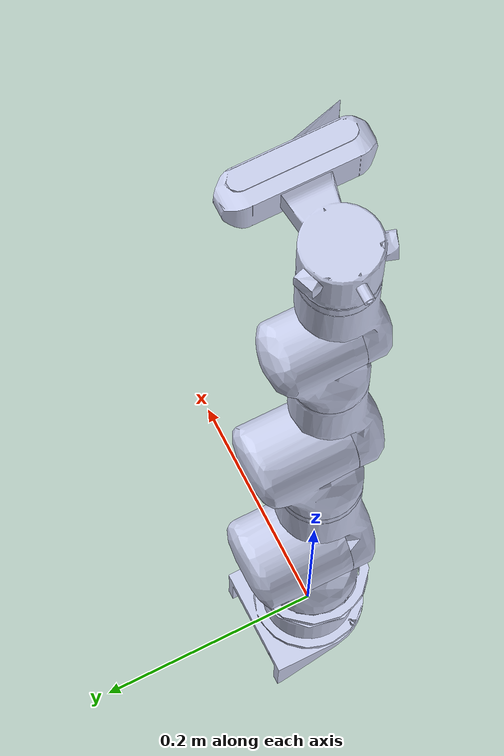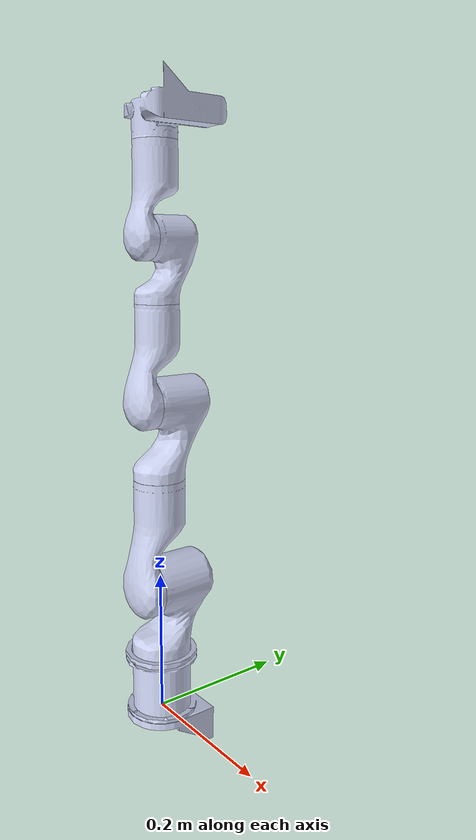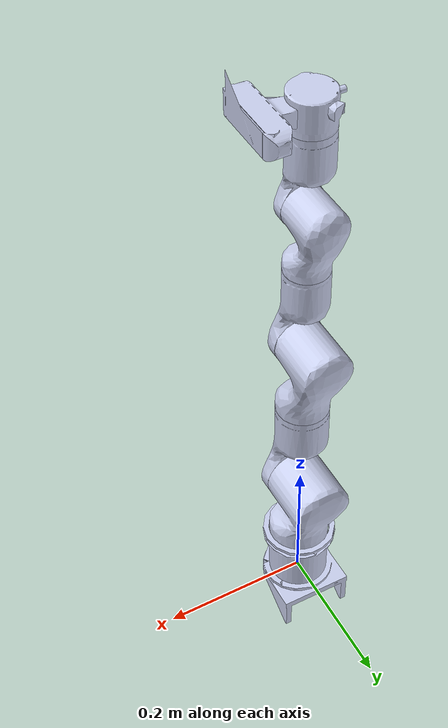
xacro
<?xml version="1.0"?>
<robot name="rm75_b_v_right" xmlns:xacro="http://www.ros.org/wiki/xacro">
  <!-- Define constants -->
  <xacro:property name="mesh_path" value="file://$(find dual_rm_75b_description)/meshes/" />
  <!-- Macro for visual and collision elements -->
  <xacro:macro name="visual_collision" params="mesh">
    <visual>
      <origin xyz="0 0 0" rpy="0 0 0" />
      <geometry>
        <mesh filename="${mesh_path}${mesh}" />
      </geometry>
      <material name="">
        <color rgba="0.79216 0.81961 0.93333 1" />
      </material>
    </visual>
    <collision>
      <origin xyz="0 0 0" rpy="0 0 0" />
      <geometry>
        <mesh filename="${mesh_path}${mesh}" />
      </geometry>
    </collision>
  </xacro:macro>
  <link
    name="r_base_link1">
    <inertial>
      <origin
        xyz="-4.8022E-05 0.0056915 0.024715"
        rpy="0 0 0" />
      <mass
        value="0.23441" />
      <inertia
        ixx="0.00027369"
        ixy="6.5702E-08"
        ixz="-3.2599E-09"
        iyy="0.000264"
        iyz="1.6355E-06"
        izz="0.00036679" />
    </inertial>
    <xacro:visual_collision mesh="r_base_link1.STL" />
  </link>
  <link
    name="r_link1">
    <inertial>
      <origin
        xyz="2.8966E-07 0.025188 -0.021107"
        rpy="0 0 0" />
      <mass
        value="0.59353" />
      <inertia
        ixx="0.0012661"
        ixy="-2.0397E-09"
        ixz="-5.3423E-09"
        iyy="0.00056131"
        iyz="-0.00021118"
        izz="0.0011816" />
    </inertial>
    <xacro:visual_collision mesh="r_link1.STL" />
  </link>
  <link
    name="r_link2">
    <inertial>
      <origin
        xyz="3.7069E-07 0.011077 0.07613"
        rpy="0 0 0" />
      <mass
        value="0.43285" />
      <inertia
        ixx="0.0012584"
        ixy="7.782E-10"
        ixz="3.39E-09"
        iyy="0.0012224"
        iyz="0.00027899"
        izz="0.00031747" />
    </inertial>
    <xacro:visual_collision mesh="r_link2.STL" />
  </link>
  <link
    name="r_link3">
    <inertial>
      <origin
        xyz="1.192E-07 0.027347 -0.023544"
        rpy="0 0 0" />
      <mass
        value="0.43132" />
      <inertia
        ixx="0.00079434"
        ixy="1.4708E-09"
        ixz="2.8344E-09"
        iyy="0.00031506"
        iyz="-0.00014262"
        izz="0.00073038" />
    </inertial>
    <xacro:visual_collision mesh="r_link3.STL" />
  </link>
  <link
    name="r_link4">
    <inertial>
      <origin
        xyz="4.7388E-06 0.010268 0.059592"
        rpy="0 0 0" />
      <mass
        value="0.28963" />
      <inertia
        ixx="0.00063737"
        ixy="-3.5039E-08"
        ixz="6.2578E-08"
        iyy="0.00061418"
        iyz="0.00014461"
        izz="0.00015649" />
    </inertial>
    <xacro:visual_collision mesh="r_link4.STL" />
  </link>
  <link
    name="r_link5">
    <inertial>
      <origin
        xyz="2.9088E-07 0.02154 -0.018042"
        rpy="0 0 0" />
      <mass
        value="0.23942" />
      <inertia
        ixx="0.00028595"
        ixy="-1.386E-09"
        ixz="-2.3541E-09"
        iyy="0.0001199"
        iyz="-4.424E-05"
        izz="0.00026273" />
    </inertial>
    <xacro:visual_collision mesh="r_link5.STL" />
  </link>
  <link
    name="r_link6">
    <inertial>
      <origin
        xyz="4.247E-06 0.0070761 0.05938"
        rpy="0 0 0" />
      <mass
        value="0.21879" />
      <inertia
        ixx="0.00035053"
        ixy="-1.6543E-08"
        ixz="2.8572E-08"
        iyy="0.0003345"
        iyz="7.8205E-05"
        izz="0.0001049" />
    </inertial>
    <xacro:visual_collision mesh="r_link6.STL" />
  </link>
  <link
    name="r_link7">
    <inertial>
      <origin
        xyz="-0.028764 5.1464E-06 0.023085"
        rpy="0 0 0" />
      <mass
        value="0.22147" />
      <inertia
        ixx="0.0001376"
        ixy="-5.7488E-08"
        ixz="1.6634E-05"
        iyy="0.00026855"
        iyz="-1.7799E-08"
        izz="0.00035277" />
    </inertial>
    <xacro:visual_collision mesh="r_link7.STL" />
  </link>

  <joint
    name="r_joint1"
    type="revolute">
    <origin
      xyz="0 0 0.187"
      rpy="-1.5708 0 3.1415" />
    <parent
      link="r_base_link1" />
    <child
      link="r_link1" />
    <axis
      xyz="0 -1 0" />
    <limit
      lower="-3.11"
      upper="3.11"
      effort="60"
      velocity="3.14" />
  </joint>
  <joint
    name="r_joint2"
    type="revolute">
    <origin
      xyz="0 0 0"
      rpy="1.5708 0 0" />
    <parent
      link="r_link1" />
    <child
      link="r_link2" />
    <axis
      xyz="0 1 0" />
    <limit
      lower="-2.27"
      upper="2.27"
      effort="60"
      velocity="3.14" />
  </joint>
  <joint
    name="r_joint3"
    type="revolute">
    <origin
      xyz="0 0 0.256"
      rpy="-1.5708 0 0" />
    <parent
      link="r_link2" />
    <child
      link="r_link3" />
    <axis
      xyz="0 1 0" />
    <limit
      lower="-3.11"
      upper="3.11"
      effort="30"
      velocity="3.925" />
  </joint>
  <joint
    name="r_joint4"
    type="revolute">
    <origin
      xyz="0 0 0"
      rpy="1.5708 0 0" />
    <parent
      link="r_link3" />
    <child
      link="r_link4" />
    <axis
      xyz="0 -1 0" />
    <limit
      lower="-2.36"
      upper="2.36"
      effort="30"
      velocity="3.925" />
  </joint>
  <joint
    name="r_joint5"
    type="revolute">
    <origin
      xyz="0 -0.00030007 0.21"
      rpy="-1.5708 0 0" />
    <parent
      link="r_link4" />
    <child
      link="r_link5" />
    <axis
      xyz="0 1 0" />
    <limit
      lower="-3.11"
      upper="3.11"
      effort="10"
      velocity="3.925" />
  </joint>
  <joint
    name="r_joint6"
    type="revolute">
    <origin
      xyz="0 0 0"
      rpy="1.5709 0 0" />
    <parent
      link="r_link5" />
    <child
      link="r_link6" />
    <axis
      xyz="0 -1 0.00015298" />
    <limit
      lower="-2.23"
      upper="2.23"
      effort="10"
      velocity="3.925" />
  </joint>
  <joint
    name="r_joint7"
    type="revolute">
    <origin
      xyz="0 -0.00028182 0.117"
      rpy="-0.00015298 0 0" />
    <parent
      link="r_link6" />
    <child
      link="r_link7" />
    <axis
      xyz="0 0 -1" />
    <limit
      lower="-6.28"
      upper="6.28"
      effort="10"
      velocity="3.925" />
  </joint>
</robot>
